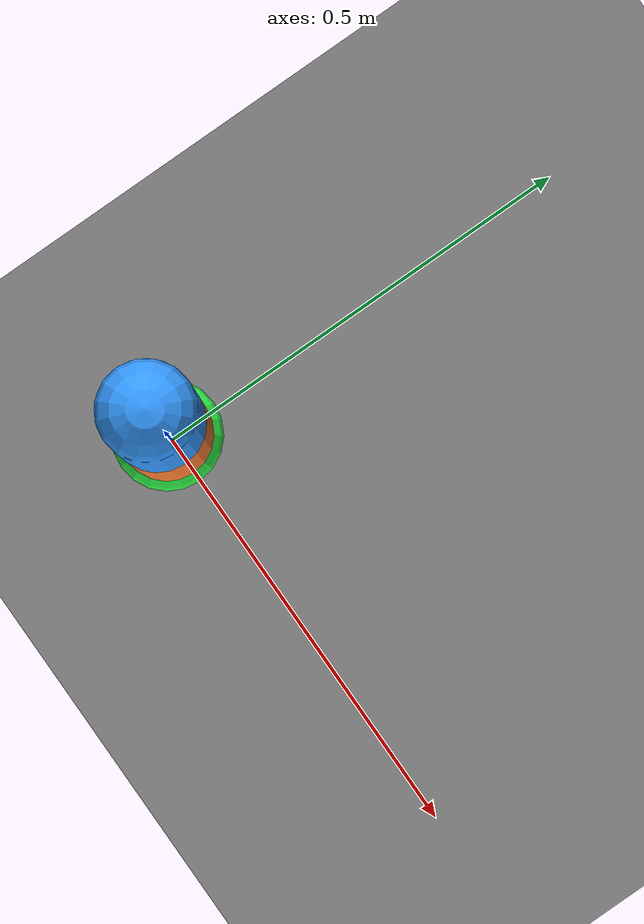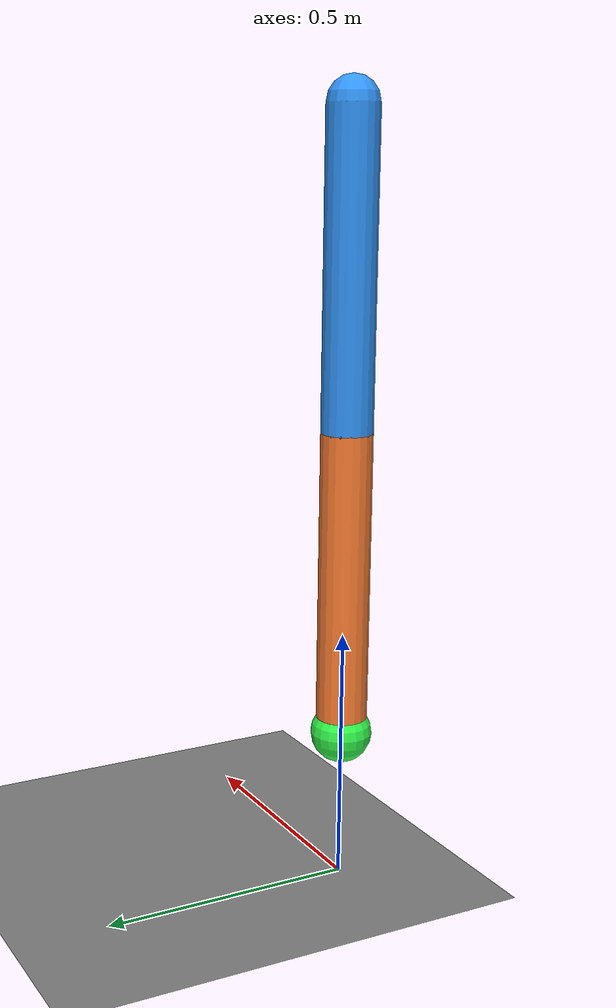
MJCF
<mujoco model="two_link_arm">
  <option timestep="0.01" gravity="0 0 -9.81" integrator="implicitfast"/>

  <worldbody>
    <geom
      name="floor"
      type="plane"
      size="2 2 0.1"
    />

    <body name="link1" pos="0 0 1.5" gravcomp="1">
      <joint
        name="joint1"
        type="hinge"
        axis="0 1 0"
        damping="1"
      />

      <geom
        name="link1_geom"
        type="capsule"
        fromto="0 0 0 0 0 -0.6"
        size="0.05"
        mass="1"
        rgba="0.2 0.6 1 1"
      />

      <body name="link2" pos="0 0 -0.6" gravcomp="1">
        <joint
          name="joint2"
          type="hinge"
          axis="0 1 0"
          damping="1"
        />

        <geom
          name="link2_geom"
          type="capsule"
          fromto="0 0 0 0 0 -0.6"
          size="0.05"
          mass="1"
          rgba="1 0.5 0.2 1"
        />

        <site
          name="end_effector"
          pos="0 0 -0.6"
          size="0.06"
          rgba="0.2 1 0.3 1"
        />
      </body>
    </body>
  </worldbody>
  <actuator>
    <position name="joint1_position" joint="joint1" kp="160" dampratio="1"/>
    <position name="joint2_position" joint="joint2" kp="160" dampratio="1"/>
  </actuator>
</mujoco>
